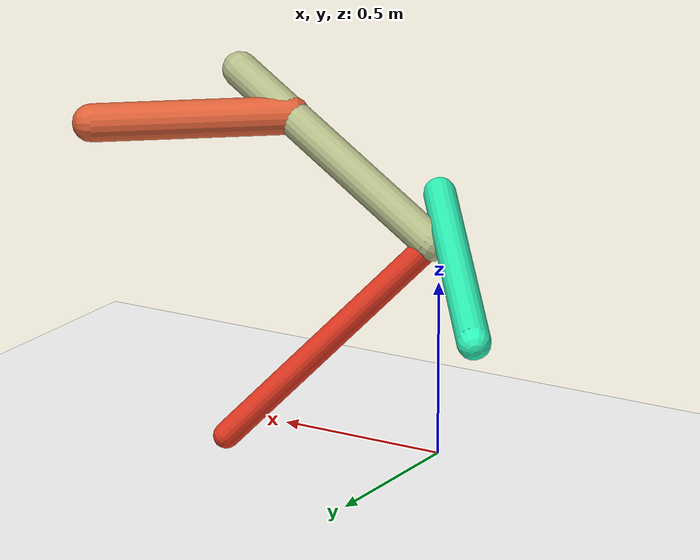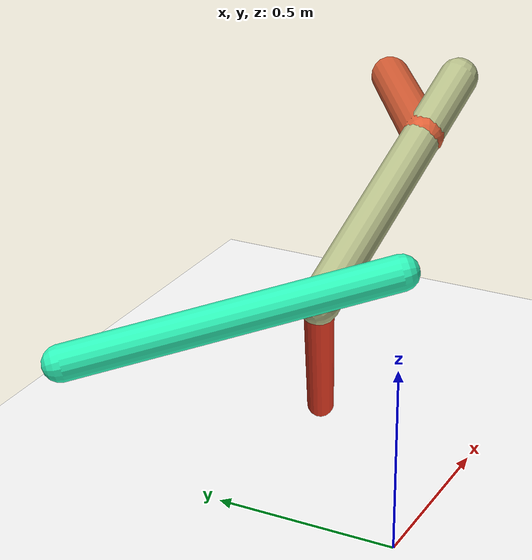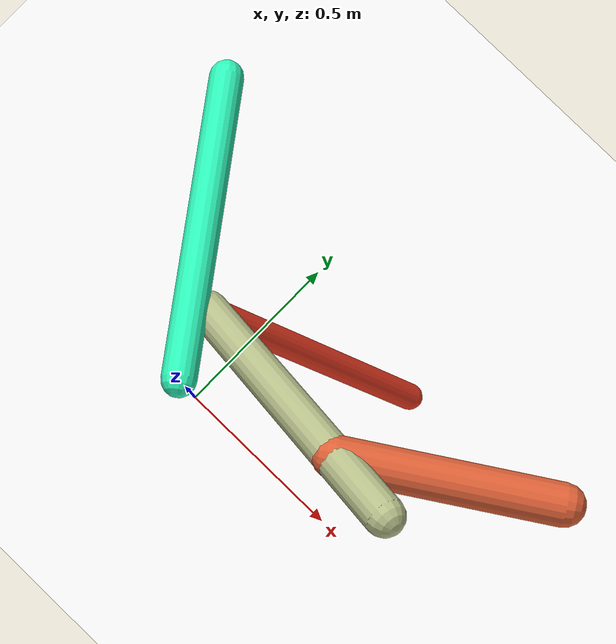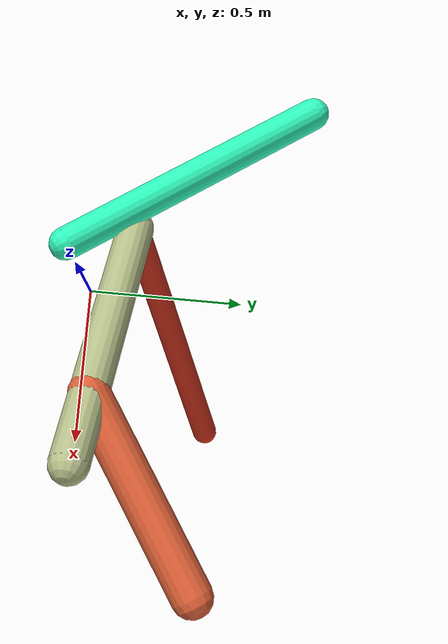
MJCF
<mujoco model="morphology">
  <option timestep="0.01"/>
  <default>
    <default class="/"/>
    <default class="0/"/>
    <default class="0/1/"/>
    <default class="0/1/2/"/>
    <default class="0/1/2/3/"/>
  </default>
  <asset>
    <texture name="texplane" type="2d" builtin="checker" rgb1="0.10000000000000001 0.20000000000000001 0.29999999999999999" rgb2="0.20000000000000001 0.29999999999999999 0.40000000000000002" width="300" height="300"/>
    <material name="MatPlane" class="/" texture="texplane" texrepeat="20 20" specular="1" shininess="1" reflectance="0.5"/>
  </asset>
  <worldbody>
    <light name="//unnamed_light_0" class="/" directional="true" pos="0 0 1.5" dir="0 0 -1.3" cutoff="100" exponent="1" diffuse="1 1 1" specular="0.10000000000000001 0.10000000000000001 0.10000000000000001"/>
    <geom name="ground" class="/" type="plane" size="15 15 0.5" material="MatPlane" rgba="1 1 1 1"/>
    <site name="body" class="/" size="9.9999999999999995e-07 9.9999999999999995e-07 9.9999999999999995e-07" pos="0 0 0.75765058994293211"/>
    <body pos="0 0 0.75765058994293211" name="0/">
      <freejoint name="0/"/>
      <geom name="0/geom" class="0/" type="capsule" contype="1" conaffinity="1" condim="3" size="0.045413639742487244" rgba="0.18172566311763383 0.96494637753085433 0.72995954054239209 1" friction="0.59999999999999998 0.10000000000000001 0.10000000000000001" fromto="0 0 0 -0.47424853888240098 0.64208283548945921 -0.16822888507542455"/>
      <site name="0/end0" class="0/" size="0.0050000000000000001" pos="-0.47424853888240098 0.64208283548945921 -0.16822888507542455"/>
      <site name="0/attach1" class="0/" size="9.9999999999999995e-07 9.9999999999999995e-07 9.9999999999999995e-07" pos="-0.11607801827967221 0.15715747546771205 -0.041176037448575606"/>
      <body pos="-0.11607801827967221 0.15715747546771205 -0.041176037448575606" name="0/1/">
        <joint name="0/1/joint/" class="0/" type="hinge" axis="0 0 1" limited="true" range="-68.943465632911625 68.943465632911625"/>
        <geom name="0/1/geom" class="0/1/" type="capsule" contype="1" conaffinity="1" condim="3" size="0.036961029840099913" rgba="0.88949083185568589 0.221609389270918 0.12785406047664338 1" friction="0.59999999999999998 0.10000000000000001 0.10000000000000001" fromto="0 0 0 0.54956132000619817 0.26039162485009304 -0.61647456348960228"/>
        <site name="0/1/end1" class="0/1/" size="0.0050000000000000001" pos="0.54956132000619817 0.26039162485009304 -0.61647456348960228"/>
        <site name="0/1/attach2" class="0/1/" size="9.9999999999999995e-07 9.9999999999999995e-07 9.9999999999999995e-07" pos="0.03909633087373722 0.018524515374871132 -0.043856604589930716"/>
        <body pos="0.03909633087373722 0.018524515374871132 -0.043856604589930716" name="0/1/2/">
          <joint name="0/1/2/joint/" class="0/1/" type="hinge" axis="-0.77281037526167184 0.24693843335621074 -0.58462426738846018" limited="true" range="-30.358776635559479 30.358776635559479"/>
          <geom name="0/1/2/geom" class="0/1/2/" type="capsule" contype="1" conaffinity="1" condim="3" size="0.050794721353513553" rgba="0.71495295766486777 0.74580119791053034 0.53855344626903667 1" friction="0.59999999999999998 0.10000000000000001 0.10000000000000001" fromto="0 0 0 0.65824696098232849 -0.07237654111213998 0.3808147055118507"/>
          <site name="0/1/2/end2" class="0/1/2/" size="0.0050000000000000001" pos="0.65824696098232849 -0.07237654111213998 0.3808147055118507"/>
          <site name="0/1/2/attach3" class="0/1/2/" size="9.9999999999999995e-07 9.9999999999999995e-07 9.9999999999999995e-07" pos="0.48161379018177314 -0.052955110090057003 0.27862736108164421"/>
          <body pos="0.48161379018177314 -0.052955110090057003 0.27862736108164421" name="0/1/2/3/">
            <joint name="0/1/2/3/joint/" class="0/1/2/" type="hinge" axis="5.5511151231257827e-17 0.98241416214937727 0.18671479322307882" limited="true" range="-69.088117002099722 69.088117002099722"/>
            <geom name="0/1/2/3/geom" class="0/1/2/3/" type="capsule" contype="1" conaffinity="1" condim="3" size="0.053795333476645515" rgba="0.87602804433332393 0.38184013628611824 0.21836890510636808 1" friction="0.59999999999999998 0.10000000000000001 0.10000000000000001" fromto="0 0 0 0.46302296328616821 0.29537934293731571 -0.018780181121449857"/>
            <site name="0/1/2/3/end3" class="0/1/2/3/" size="0.0050000000000000001" pos="0.46302296328616821 0.29537934293731571 -0.018780181121449857"/>
          </body>
        </body>
      </body>
      <camera name="0/iso" class="0/" mode="trackcom" pos="-2.2999999999999998 -2.2999999999999998 1" xyaxes="0.45000000000000001 -0.45000000000000001 0 0.29999999999999999 0.14999999999999999 0.93999999999999995"/>
    </body>
  </worldbody>
  <actuator>
    <motor name="0/1/motor" class="0/1/" ctrllimited="true" ctrlrange="-1 1" gear="53" joint="0/1/joint/"/>
    <motor name="0/1/2/motor" class="0/1/2/" ctrllimited="true" ctrlrange="-1 1" gear="94" joint="0/1/2/joint/"/>
    <motor name="0/1/2/3/motor" class="0/1/2/3/" ctrllimited="true" ctrlrange="-1 1" gear="52" joint="0/1/2/3/joint/"/>
  </actuator>
  <sensor>
    <subtreelinvel name="velocity" body="0/"/>
  </sensor>
</mujoco>
